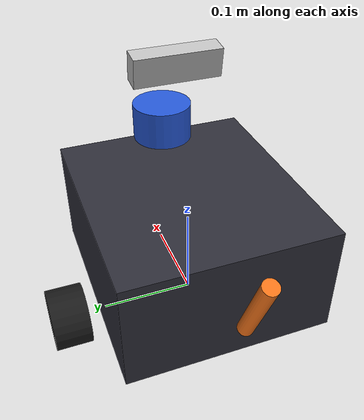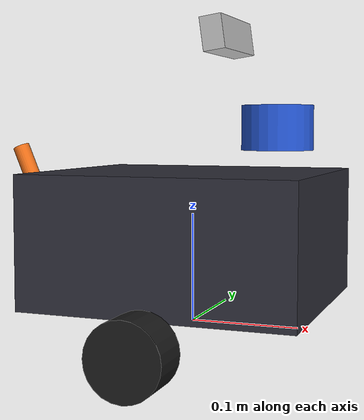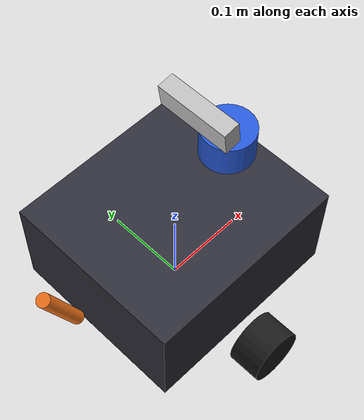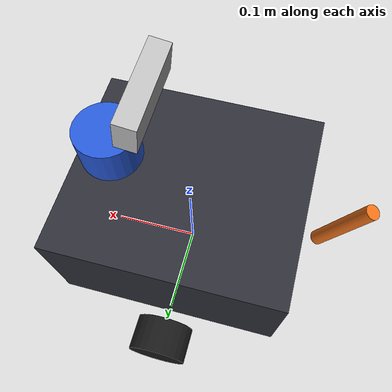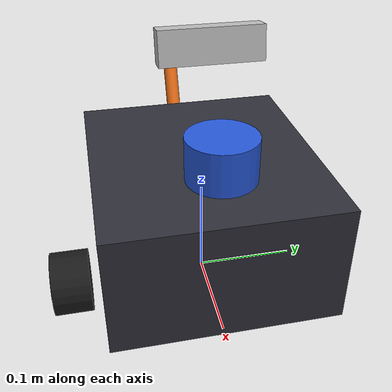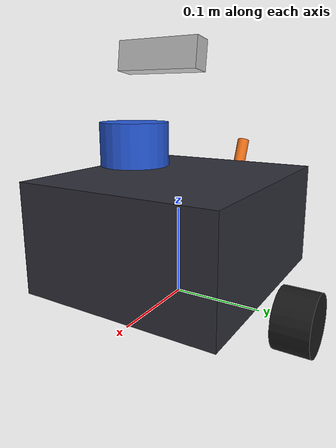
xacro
<?xml version="1.0"?>
<robot xmlns:xacro="http://www.ros.org/wiki/xacro" name="marcus">

  <!-- BASE LINK -->
  <link name="base_link">
    <inertial>
      <mass value="3.8"/>
      <origin xyz="0 0 0.08" rpy="0 0 0"/>
      <inertia ixx="0.025" ixy="0" ixz="0" iyy="0.032" iyz="0" izz="0.045"/>
    </inertial>
    <visual>
      <origin xyz="0 0 0.08" rpy="0 0 0"/>
      <geometry>
        <box size="0.25 0.22 0.12"/>
      </geometry>
      <material name="marcus_dark">
        <color rgba="0.18 0.18 0.22 1.0"/>
      </material>
    </visual>
    <collision>
      <origin xyz="0 0 0.08" rpy="0 0 0"/>
      <geometry>
        <box size="0.25 0.22 0.12"/>
      </geometry>
    </collision>
  </link>

  <!-- BASE FOOTPRINT (REP-105 ground projection Z=0) -->
  <link name="base_footprint"/>
  <joint name="base_footprint_joint" type="fixed">
    <parent link="base_link"/>
    <child link="base_footprint"/>
    <origin xyz="0 0 -0.0335" rpy="0 0 0"/>
  </joint>

  <!-- LEFT WHEEL (R=0.0335m, Y=+0.1425m) -->
  <link name="left_wheel">
    <inertial>
      <mass value="0.35"/>
      <inertia ixx="0.0002" ixy="0" ixz="0" iyy="0.0002" iyz="0" izz="0.0004"/>
    </inertial>
    <visual>
      <geometry>
        <cylinder radius="0.0335" length="0.04"/>
      </geometry>
      <material name="track_black">
        <color rgba="0.1 0.1 0.1 1.0"/>
      </material>
    </visual>
    <collision>
      <geometry>
        <cylinder radius="0.0335" length="0.04"/>
      </geometry>
    </collision>
  </link>

  <joint name="left_wheel_joint" type="continuous">
    <parent link="base_link"/>
    <child link="left_wheel"/>
    <origin xyz="0 0.1425 0.0" rpy="-1.5707963 0 0"/>
    <axis xyz="0 0 1"/>
    <limit effort="12.0" velocity="15.0"/>
  </joint>

  <!-- RIGHT WHEEL (R=0.0335m, Y=-0.1425m) -->
  <link name="right_wheel">
    <inertial>
      <mass value="0.35"/>
      <inertia ixx="0.0002" ixy="0" ixz="0" iyy="0.0002" iyz="0" izz="0.0004"/>
    </inertial>
    <visual>
      <geometry>
        <cylinder radius="0.0335" length="0.04"/>
      </geometry>
      <material name="track_black">
        <color rgba="0.1 0.1 0.1 1.0"/>
      </material>
    </visual>
    <collision>
      <geometry>
        <cylinder radius="0.0335" length="0.04"/>
      </geometry>
    </collision>
  </link>

  <joint name="right_wheel_joint" type="continuous">
    <parent link="base_link"/>
    <child link="right_wheel"/>
    <origin xyz="0 -0.1425 0.0" rpy="-1.5707963 0 0"/>
    <axis xyz="0 0 1"/>
    <limit effort="12.0" velocity="15.0"/>
  </joint>

  <!-- FRONT & REAR PASSIVE CASTERS FOR STABILITY -->
  <link name="front_caster">
    <inertial>
      <mass value="0.08"/>
      <inertia ixx="0.00005" ixy="0" ixz="0" iyy="0.00005" iyz="0" izz="0.00005"/>
    </inertial>
    <collision>
      <geometry>
        <sphere radius="0.0165"/>
      </geometry>
      <surface>
        <friction>
          <ode>
            <mu>0.001</mu>
            <mu2>0.001</mu2>
          </ode>
        </friction>
      </surface>
    </collision>
  </link>
  <joint name="front_caster_joint" type="fixed">
    <parent link="base_link"/>
    <child link="front_caster"/>
    <origin xyz="0.10 0 -0.017" rpy="0 0 0"/>
  </joint>

  <link name="rear_caster">
    <inertial>
      <mass value="0.08"/>
      <inertia ixx="0.00005" ixy="0" ixz="0" iyy="0.00005" iyz="0" izz="0.00005"/>
    </inertial>
    <collision>
      <geometry>
        <sphere radius="0.0165"/>
      </geometry>
      <surface>
        <friction>
          <ode>
            <mu>0.001</mu>
            <mu2>0.001</mu2>
          </ode>
        </friction>
      </surface>
    </collision>
  </link>
  <joint name="rear_caster_joint" type="fixed">
    <parent link="base_link"/>
    <child link="rear_caster"/>
    <origin xyz="-0.10 0 -0.017" rpy="0 0 0"/>
  </joint>

  <!-- RPLIDAR C1 (360 ToF Laser Scan, Z=0.18m, yaw=180 deg) -->
  <link name="laser">
    <visual>
      <origin xyz="0 0 0" rpy="0 0 0"/>
      <geometry>
        <cylinder radius="0.032" length="0.04"/>
      </geometry>
      <material name="lidar_blue">
        <color rgba="0.15 0.35 0.85 1.0"/>
      </material>
    </visual>
  </link>
  <joint name="laser_joint" type="fixed">
    <parent link="base_link"/>
    <child link="laser"/>
    <origin xyz="0.08 0.0 0.18" rpy="0.0 0.0 3.14159265"/>
  </joint>

  <!-- OAK-D LITE CAMERA (Z=0.2616m, pitch=-0.1396 rad / 8 deg UP) -->
  <link name="oak_camera_link">
    <visual>
      <origin xyz="0 0 0" rpy="0 0 0"/>
      <geometry>
        <box size="0.02 0.09 0.03"/>
      </geometry>
      <material name="camera_silver">
        <color rgba="0.75 0.75 0.75 1.0"/>
      </material>
    </visual>
  </link>
  <joint name="oak_camera_joint" type="fixed">
    <parent link="base_link"/>
    <child link="oak_camera_link"/>
    <origin xyz="0.0332 0.0 0.2616" rpy="0.0 -0.1396 0.0"/>
  </joint>

  <!-- Alias camera_link per compatibilita' legacy -->
  <link name="camera_link"/>
  <joint name="camera_link_alias_joint" type="fixed">
    <parent link="oak_camera_link"/>
    <child link="camera_link"/>
    <origin xyz="0 0 0" rpy="0 0 0"/>
  </joint>

  <!-- REP-103 Optical Frames -->
  <link name="camera_optical_frame"/>
  <joint name="camera_optical_joint" type="fixed">
    <parent link="oak_camera_link"/>
    <child link="camera_optical_frame"/>
    <origin xyz="0 0 0" rpy="-1.5707963 0.0 -1.5707963"/>
  </joint>

  <link name="oak_left_camera_optical_frame"/>
  <joint name="oak_left_camera_optical_joint" type="fixed">
    <parent link="oak_camera_link"/>
    <child link="oak_left_camera_optical_frame"/>
    <origin xyz="0 0 0" rpy="-1.5707963 0.0 -1.5707963"/>
  </joint>

  <link name="oak_imu_frame"/>
  <joint name="oak_imu_joint" type="fixed">
    <parent link="oak_camera_link"/>
    <child link="oak_imu_frame"/>
    <origin xyz="0 0 0" rpy="0 0 0"/>
  </joint>

  <!-- CHASSIS IMU & BMI270 -->
  <link name="chassis_imu_link"/>
  <joint name="chassis_imu_joint" type="fixed">
    <parent link="base_link"/>
    <child link="chassis_imu_link"/>
    <origin xyz="0.0 0.0 0.05" rpy="0 0 0"/>
  </joint>

  <link name="imu_link"/>
  <joint name="imu_joint" type="fixed">
    <parent link="base_link"/>
    <child link="imu_link"/>
    <origin xyz="0.10 0.0 0.15" rpy="0 0 0"/>
  </joint>

  <!-- ULTRASONIC SENSOR -->
  <link name="ultrasonic_sensor"/>
  <joint name="ultrasonic_sensor_joint" type="fixed">
    <parent link="base_link"/>
    <child link="ultrasonic_sensor"/>
    <origin xyz="0.12 0.0 0.05" rpy="0 0 0"/>
  </joint>

  <!-- SERVO CODA ESPRESSIVA (SPEC-01 Green Zone: [-45 deg, +45 deg]) -->
  <link name="tail_link">
    <inertial>
      <mass value="0.03"/>
      <inertia ixx="0.00001" ixy="0" ixz="0" iyy="0.00001" iyz="0" izz="0.00001"/>
    </inertial>
    <visual>
      <origin xyz="-0.04 0 0.02" rpy="0 -0.4 0"/>
      <geometry>
        <cylinder radius="0.008" length="0.09"/>
      </geometry>
      <material name="marcus_orange">
        <color rgba="0.95 0.45 0.10 1.0"/>
      </material>
    </visual>
  </link>
  <joint name="tail_joint" type="revolute">
    <parent link="base_link"/>
    <child link="tail_link"/>
    <origin xyz="-0.125 0.0 0.10" rpy="0 0 0"/>
    <axis xyz="0 0 1"/>
    <limit lower="-0.7854" upper="0.7854" effort="1.5" velocity="6.0"/>
  </joint>

  <!-- =====================================================================
       GAZEBO HARMONIC PLUGINS
       ===================================================================== -->
  <gazebo>
    <plugin filename="gz-sim-diff-drive-system" name="gz::sim::systems::DiffDrive">
      <left_joint>left_wheel_joint</left_joint>
      <right_joint>right_wheel_joint</right_joint>
      <wheel_separation>0.285</wheel_separation>
      <wheel_radius>0.0335</wheel_radius>
      <odom_publish_frequency>50</odom_publish_frequency>
      <max_linear_velocity>0.40</max_linear_velocity>
      <min_linear_velocity>-0.40</min_linear_velocity>
      <max_angular_velocity>1.80</max_angular_velocity>
      <min_angular_velocity>-1.80</min_angular_velocity>
      <topic>/gz/cmd_vel_safe</topic>
      <odom_topic>/gz/odom_raw</odom_topic>
      <tf_topic>/tf</tf_topic>
      <frame_id>odom</frame_id>
      <child_frame_id>base_link</child_frame_id>
    </plugin>

    <plugin filename="gz-sim-joint-state-publisher-system" name="gz::sim::systems::JointStatePublisher">
      <topic>joint_states</topic>
    </plugin>
  </gazebo>

  <!-- WHEEL FRICTION FOR CRISP DIFFERENTIAL DRIVE IN GAZEBO ODE -->
  <gazebo reference="left_wheel">
    <mu1>1.2</mu1>
    <mu2>1.2</mu2>
  </gazebo>
  <gazebo reference="right_wheel">
    <mu1>1.2</mu1>
    <mu2>1.2</mu2>
  </gazebo>
  <gazebo reference="front_caster">
    <mu1>0.001</mu1>
    <mu2>0.001</mu2>
  </gazebo>
  <gazebo reference="rear_caster">
    <mu1>0.001</mu1>
    <mu2>0.001</mu2>
  </gazebo>

  <!-- RPLIDAR C1 360 ToF Sensor (10 Hz) -->
  <gazebo reference="laser">
    <sensor name="rplidar_c1" type="gpu_lidar">
      <pose>0 0 0 0 0 0</pose>
      <topic>/gz/scan_raw</topic>
      <gz_frame_id>laser</gz_frame_id>
      <update_rate>10</update_rate>
      <always_on>1</always_on>
      <visualize>false</visualize>
      <lidar>
        <scan>
          <horizontal>
            <samples>360</samples>
            <resolution>1</resolution>
            <min_angle>-3.14159265</min_angle>
            <max_angle>3.14159265</max_angle>
          </horizontal>
        </scan>
        <range>
          <min>0.10</min>
          <max>12.0</max>
          <resolution>0.01</resolution>
        </range>
      </lidar>
    </sensor>
  </gazebo>

  <!-- OAK-D Lite RGB-D Camera (640x480 @ 3 Hz, hfov=1.1171986 rad => fx=fy=512.0 matching semantic_costmap_injector 1.25 Hz) -->
  <gazebo reference="oak_camera_link">
    <sensor name="oak_rgbd_camera" type="rgbd_camera">
      <camera>
        <horizontal_fov>1.1171986</horizontal_fov>
        <image>
          <width>640</width>
          <height>480</height>
          <format>R8G8B8</format>
        </image>
        <clip>
          <near>0.20</near>
          <far>10.0</far>
        </clip>
      </camera>
      <always_on>1</always_on>
      <update_rate>3</update_rate>
      <visualize>false</visualize>
      <topic>/camera</topic>
      <gz_frame_id>camera_optical_frame</gz_frame_id>
    </sensor>
  </gazebo>

  <!-- IMU BMI270 Sensor (50 Hz) -->
  <gazebo reference="imu_link">
    <sensor name="bmi270_imu" type="imu">
      <always_on>1</always_on>
      <update_rate>50</update_rate>
      <topic>/imu/data</topic>
      <gz_frame_id>imu_link</gz_frame_id>
    </sensor>
  </gazebo>

</robot>
